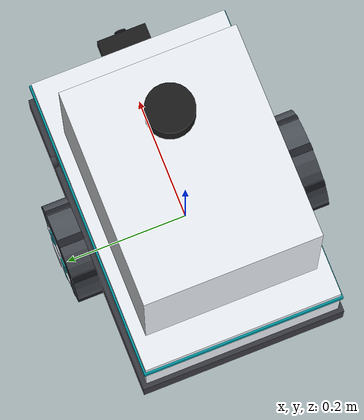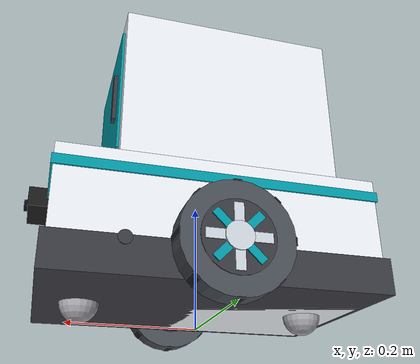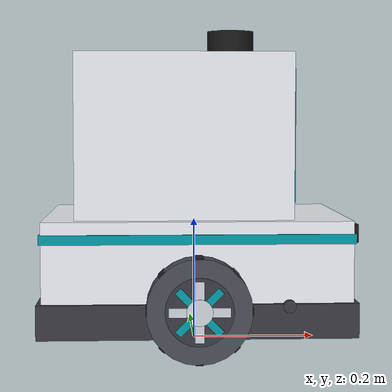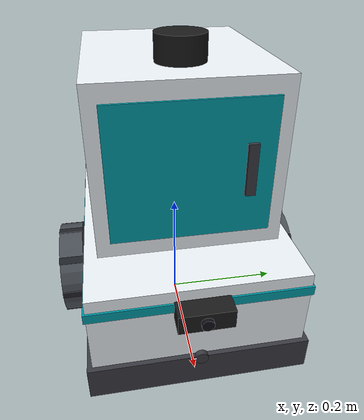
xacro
<?xml version="1.0"?>
<robot xmlns:xacro="http://www.ros.org/wiki/xacro" name="ahser">
  <!-- AHSER: Autonomous Hospital Service Robot                             -->
  <!-- Top-Level System URDF / XACRO Description                            -->

  <!-- Centralized Robot Dimensional & Mass Parameters (SI Metric Units)    -->

  <!-- Ground clearance and wheel parameters -->
  <xacro:property name="wheel_radius" value="0.080"/>       <!-- 80 mm radius / 160 mm diameter -->
  <xacro:property name="wheel_width" value="0.040"/>        <!-- 40 mm tread width -->
  <xacro:property name="wheel_track" value="0.380"/>        <!-- 380 mm lateral track width between wheels -->
  <xacro:property name="wheel_mass" value="0.80"/>          <!-- 0.80 kg per drive wheel -->

  <xacro:property name="ground_clearance" value="0.030"/>   <!-- 30 mm chassis underside ground clearance -->
  <xacro:property name="caster_radius" value="0.030"/>      <!-- 30 mm radius caster sphere (touches z=0) -->
  <xacro:property name="caster_x_offset" value="0.180"/>    <!-- 180 mm fore/aft distance from axle -->
  <xacro:property name="caster_mass" value="0.25"/>         <!-- 0.25 kg per caster assembly -->

  <!-- Main chassis body parameters -->
  <xacro:property name="chassis_length" value="0.480"/>     <!-- 480 mm front-to-back length -->
  <xacro:property name="chassis_width" value="0.320"/>      <!-- 320 mm width (fits between wheels) -->
  <xacro:property name="chassis_height" value="0.180"/>     <!-- 180 mm vertical height -->
  <xacro:property name="chassis_mass" value="8.00"/>        <!-- 8.0 kg base chassis structure and battery -->

  <!-- Upper medicine/storage compartment parameters -->
  <xacro:property name="storage_length" value="0.340"/>     <!-- 340 mm storage cabinet length -->
  <xacro:property name="storage_width" value="0.280"/>      <!-- 280 mm storage cabinet width -->
  <xacro:property name="storage_height" value="0.260"/>     <!-- 260 mm storage cabinet height -->
  <xacro:property name="storage_x_offset" value="-0.020"/>  <!-- Offset slightly aft for front sensor deck -->
  <xacro:property name="storage_mass" value="3.50"/>        <!-- 3.5 kg payload compartment -->

  <!-- Sensor parameters -->
  <xacro:property name="lidar_radius" value="0.038"/>       <!-- 76 mm diameter LiDAR housing -->
  <xacro:property name="lidar_height" value="0.040"/>       <!-- 40 mm LiDAR sensor height -->
  <xacro:property name="lidar_mass" value="0.25"/>          <!-- 0.25 kg 2D LiDAR scanner -->
  <xacro:property name="lidar_x_offset" value="0.060"/>     <!-- Forward-biased on roof for clear front view -->
  <xacro:property name="lidar_z_offset"
    value="${ground_clearance + chassis_height + storage_height + lidar_height / 2.0}"/>

  <xacro:property name="camera_length" value="0.030"/>
  <xacro:property name="camera_width" value="0.080"/>
  <xacro:property name="camera_height" value="0.030"/>
  <xacro:property name="camera_mass" value="0.10"/>
  <xacro:property name="camera_x_offset" value="${chassis_length / 2.0 + camera_length / 2.0}"/>
  <xacro:property name="camera_z_offset" value="${ground_clearance + chassis_height * 0.82}"/>

  <xacro:property name="imu_size" value="0.025"/>
  <xacro:property name="imu_height" value="0.008"/>
  <xacro:property name="imu_mass" value="0.02"/>
  <xacro:property name="imu_x_offset" value="0.000"/>
  <xacro:property name="imu_z_offset" value="${ground_clearance + 0.020}"/>

  <!-- Modular Includes                                                     -->
  <xacro:include filename="$(find ahser_description)/urdf/materials.xacro"/>
  <xacro:include filename="$(find ahser_description)/urdf/wheels.xacro"/>
  <xacro:include filename="$(find ahser_description)/urdf/sensors.xacro"/>

  <!-- Kinematic Base / Footprint Frames                                    -->

  <!-- Root Link: base_footprint on ground plane z=0 (REP 120 standard) -->
  <link name="base_footprint"/>

  <!-- base_link located at ground plane projection of drive axle -->
  <joint name="base_footprint_joint" type="fixed">
    <parent link="base_footprint"/>
    <child link="base_link"/>
    <origin xyz="0 0 0" rpy="0 0 0"/>
  </joint>

  <link name="base_link"/>

  <!-- Main Chassis Link & Joint                                            -->

  <joint name="chassis_joint" type="fixed">
    <parent link="base_link"/>
    <child link="chassis_link"/>
    <!-- Positioned above ground clearance -->
    <origin xyz="0.0 0.0 ${ground_clearance + chassis_height / 2.0}" rpy="0 0 0"/>
  </joint>

  <link name="chassis_link">
    <!-- Main white chassis body enclosure -->
    <visual>
      <origin xyz="0 0 0" rpy="0 0 0"/>
      <geometry>
        <box size="${chassis_length} ${chassis_width} ${chassis_height}"/>
      </geometry>
      <material name="hospital_white"/>
    </visual>

    <!-- Lower protective perimeter bumper / skirt -->
    <visual>
      <origin xyz="0 0 -${chassis_height * 0.35}" rpy="0 0 0"/>
      <geometry>
        <box size="${chassis_length + 0.015} ${chassis_width + 0.015} ${chassis_height * 0.30}"/>
      </geometry>
      <material name="dark_grey"/>
    </visual>

    <!-- Medical teal accent beltline trim -->
    <visual>
      <origin xyz="0 0 ${chassis_height * 0.35}" rpy="0 0 0"/>
      <geometry>
        <box size="${chassis_length + 0.006} ${chassis_width + 0.006} 0.015"/>
      </geometry>
      <material name="medical_teal"/>
    </visual>

    <!-- Physical collision bounding box -->
    <collision>
      <origin xyz="0 0 0" rpy="0 0 0"/>
      <geometry>
        <box size="${chassis_length} ${chassis_width} ${chassis_height}"/>
      </geometry>
    </collision>

    <!-- Chassis inertial tensor -->
    <inertial>
      <mass value="${chassis_mass}"/>
      <origin xyz="0 0 0" rpy="0 0 0"/>
      <inertia
        ixx="${(chassis_mass / 12.0) * (chassis_width * chassis_width + chassis_height * chassis_height)}"
        ixy="0.0"
        ixz="0.0"
        iyy="${(chassis_mass / 12.0) * (chassis_length * chassis_length + chassis_height * chassis_height)}"
        iyz="0.0"
        izz="${(chassis_mass / 12.0) * (chassis_length * chassis_length + chassis_width * chassis_width)}"/>
    </inertial>
  </link>

  <!-- Upper Medicine / Supply Storage Compartment                          -->

  <joint name="storage_compartment_joint" type="fixed">
    <parent link="base_link"/>
    <child link="storage_compartment_link"/>
    <!-- Stacked directly upon the chassis top surface -->
    <origin xyz="${storage_x_offset} 0.0 ${ground_clearance + chassis_height + storage_height / 2.0}" rpy="0 0 0"/>
  </joint>

  <link name="storage_compartment_link">
    <!-- Storage cabinet exterior body -->
    <visual>
      <origin xyz="0 0 0" rpy="0 0 0"/>
      <geometry>
        <box size="${storage_length} ${storage_width} ${storage_height}"/>
      </geometry>
      <material name="hospital_white"/>
    </visual>

    <!-- Front medicine delivery door face with medical teal styling -->
    <visual>
      <origin xyz="${storage_length / 2.0 + 0.002} 0 0" rpy="0 0 0"/>
      <geometry>
        <box size="0.004 ${storage_width * 0.85} ${storage_height * 0.80}"/>
      </geometry>
      <material name="medical_teal"/>
    </visual>

    <!-- Storage door latch / handle visual indicator -->
    <visual>
      <origin xyz="${storage_length / 2.0 + 0.006} ${storage_width * 0.3} 0" rpy="0 0 0"/>
      <geometry>
        <box size="0.008 0.015 0.080"/>
      </geometry>
      <material name="dark_grey"/>
    </visual>

    <!-- Physical collision bounding box -->
    <collision>
      <origin xyz="0 0 0" rpy="0 0 0"/>
      <geometry>
        <box size="${storage_length} ${storage_width} ${storage_height}"/>
      </geometry>
    </collision>

    <!-- Storage compartment inertial tensor -->
    <inertial>
      <mass value="${storage_mass}"/>
      <origin xyz="0 0 0" rpy="0 0 0"/>
      <inertia
        ixx="${(storage_mass / 12.0) * (storage_width * storage_width + storage_height * storage_height)}"
        ixy="0.0"
        ixz="0.0"
        iyy="${(storage_mass / 12.0) * (storage_length * storage_length + storage_height * storage_height)}"
        iyz="0.0"
        izz="${(storage_mass / 12.0) * (storage_length * storage_length + storage_width * storage_width)}"/>
    </inertial>
  </link>

  <!-- Wheels: Powered Drive Wheels & Passive Stability Casters             -->

  <!-- Left & Right Differential Drive Wheels -->
  <xacro:drive_wheel prefix="left" y_reflect="1"/>
  <xacro:drive_wheel prefix="right" y_reflect="-1"/>

  <!-- Front & Rear Passive Support Casters for balanced 4-point ground contact -->
  <xacro:caster_wheel prefix="front" x_offset="${caster_x_offset}"/>
  <xacro:caster_wheel prefix="rear" x_offset="-${caster_x_offset}"/>

  <!-- Sensor Suite (LiDAR, RGB Camera, IMU)                                -->
  <xacro:sensors/>

  <!-- Modern Gazebo (Jetty) Differential Drive & Joint State Plugins       -->
  <gazebo>
    <plugin
      filename="gz-sim-diff-drive-system"
      name="gz::sim::systems::DiffDrive">
      <left_joint>left_wheel_joint</left_joint>
      <right_joint>right_wheel_joint</right_joint>
      <wheel_separation>${wheel_track}</wheel_separation>
      <wheel_radius>${wheel_radius}</wheel_radius>
      <max_linear_acceleration>1.5</max_linear_acceleration>
      <min_linear_acceleration>-1.5</min_linear_acceleration>
      <max_angular_acceleration>2.5</max_angular_acceleration>
      <min_angular_acceleration>-2.5</min_angular_acceleration>
      <max_linear_velocity>0.8</max_linear_velocity>
      <min_linear_velocity>-0.8</min_linear_velocity>
      <max_angular_velocity>1.5</max_angular_velocity>
      <min_angular_velocity>-1.5</min_angular_velocity>
      <topic>/cmd_vel</topic>
      <odom_topic>/odom</odom_topic>
      <tf_topic>/tf</tf_topic>
      <frame_id>odom</frame_id>
      <child_frame_id>base_footprint</child_frame_id>
      <odom_publish_frequency>50</odom_publish_frequency>
    </plugin>

    <plugin
      filename="gz-sim-joint-state-publisher-system"
      name="gz::sim::systems::JointStatePublisher">
      <topic>/joint_states</topic>
      <joint_name>left_wheel_joint</joint_name>
      <joint_name>right_wheel_joint</joint_name>
    </plugin>
  </gazebo>

</robot>

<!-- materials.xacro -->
<robot xmlns:xacro="http://www.ros.org/wiki/xacro">
  <!-- AHSER Material & Color Definitions                                  -->
  <!-- Clean, professional medical/service robot color palette             -->

  <!-- Primary Chassis & Storage Body: Clean Hospital White -->
  <material name="hospital_white">
    <color rgba="0.92 0.94 0.96 1.0"/>
  </material>

  <!-- Accent: Medical Service Teal/Cyan for Doors & Brand Identification -->
  <material name="medical_teal">
    <color rgba="0.0 0.60 0.65 1.0"/>
  </material>

  <!-- Chassis Lower Skirt & Mechanical Mounts: Dark Graphite Grey -->
  <material name="dark_grey">
    <color rgba="0.22 0.22 0.25 1.0"/>
  </material>

  <!-- Secondary Trims & Structural Plates: Neutral Light Grey -->
  <material name="light_grey">
    <color rgba="0.75 0.77 0.80 1.0"/>
  </material>

  <!-- Drive Wheel Non-Marking Medical Rubber Tire (slate grey base) -->
  <material name="tire_rubber">
    <color rgba="0.28 0.30 0.33 1.0"/>
  </material>

  <!-- Non-marking tire high-traction grip tread lugs -->
  <material name="tire_tread">
    <color rgba="0.12 0.13 0.15 1.0"/>
  </material>

  <!-- Wheel rim alloy / hub face -->
  <material name="wheel_hub">
    <color rgba="0.80 0.83 0.86 1.0"/>
  </material>

  <!-- Drive Wheel Tires: Durable Matte Rubber Black -->
  <material name="wheel_black">
    <color rgba="0.12 0.12 0.12 1.0"/>
  </material>

  <!-- Passive Caster Spheres: Smooth Low-Friction Metallic Steel -->
  <material name="caster_metallic">
    <color rgba="0.65 0.65 0.68 1.0"/>
  </material>

  <!-- Sensor Enclosures (LiDAR, Camera body): Matte Black -->
  <material name="sensor_black">
    <color rgba="0.10 0.10 0.10 1.0"/>
  </material>

  <!-- Optical Lenses & Display Panel: Tinted Obsidian -->
  <material name="lens_glass">
    <color rgba="0.05 0.05 0.08 1.0"/>
  </material>
</robot>

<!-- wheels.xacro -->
<robot xmlns:xacro="http://www.ros.org/wiki/xacro">
  <!-- AHSER Wheels & Mobile Base Locomotion Module                        -->
  <!-- High-traction non-marking hospital floor tires & passive casters     -->

  <!-- Macro: Realistic low-profile tire tread grip lug along wheel circumference -->
  <xacro:macro name="tread_lug" params="angle">
    <visual>
      <origin
        xyz="${(wheel_radius - 0.0005) * cos(angle)} 0 ${(wheel_radius - 0.0005) * sin(angle)}"
        rpy="0 ${-angle} 0"/>
      <geometry>
        <!-- Sleek, subtle 0.5mm tread grip flush with tire surface (not spiked) -->
        <box size="0.002 ${wheel_width + 0.001} 0.012"/>
      </geometry>
      <material name="tire_tread"/>
    </visual>
  </xacro:macro>

  <!-- Macro: Differential Drive Powered Wheel -->
  <xacro:macro name="drive_wheel" params="prefix y_reflect">
    <joint name="${prefix}_wheel_joint" type="continuous">
      <parent link="base_link"/>
      <child link="${prefix}_wheel_link"/>
      <!-- Symmetrical placement along the transverse (Y) axle -->
      <origin xyz="0.0 ${y_reflect * (wheel_track / 2.0)} ${wheel_radius}" rpy="0 0 0"/>
      <!-- Standard ROS differential drive rotation axis (Pitch / Y-axis) -->
      <axis xyz="0 1 0"/>
      <dynamics damping="0.1" friction="0.1"/>
    </joint>

    <link name="${prefix}_wheel_link">
      <!-- Main non-marking hospital grade rubber tire -->
      <visual>
        <origin xyz="0 0 0" rpy="${pi/2} 0 0"/>
        <geometry>
          <cylinder radius="${wheel_radius}" length="${wheel_width}"/>
        </geometry>
        <material name="tire_rubber"/>
      </visual>

      <!-- Inner recessed wheel rim bed -->
      <visual>
        <origin xyz="0 0 0" rpy="${pi/2} 0 0"/>
        <geometry>
          <cylinder radius="${wheel_radius * 0.65}" length="${wheel_width + 0.002}"/>
        </geometry>
        <material name="dark_grey"/>
      </visual>

      <!-- 8-segment high-traction grip tread pattern around perimeter (visible from top view) -->
      <xacro:tread_lug angle="0"/>
      <xacro:tread_lug angle="${pi/4}"/>
      <xacro:tread_lug angle="${pi/2}"/>
      <xacro:tread_lug angle="${3*pi/4}"/>
      <xacro:tread_lug angle="${pi}"/>
      <xacro:tread_lug angle="${-3*pi/4}"/>
      <xacro:tread_lug angle="${-pi/2}"/>
      <xacro:tread_lug angle="${-pi/4}"/>

      <!-- Outer Wheel Rim & Hub Face (offset toward exterior) -->
      <!-- Center hub cap -->
      <visual>
        <origin xyz="0 ${y_reflect * (wheel_width / 2.0 + 0.003)} 0" rpy="${pi/2} 0 0"/>
        <geometry>
          <cylinder radius="${wheel_radius * 0.25}" length="0.004"/>
        </geometry>
        <material name="wheel_hub"/>
      </visual>

      <!-- High-contrast alloy rim spokes for side-view rotational visibility -->
      <visual>
        <origin xyz="0 ${y_reflect * (wheel_width / 2.0 + 0.002)} 0" rpy="0 0 0"/>
        <geometry>
          <box size="${wheel_radius * 1.15} 0.002 0.014"/>
        </geometry>
        <material name="wheel_hub"/>
      </visual>

      <visual>
        <origin xyz="0 ${y_reflect * (wheel_width / 2.0 + 0.002)} 0" rpy="0 0 0"/>
        <geometry>
          <box size="0.014 0.002 ${wheel_radius * 1.15}"/>
        </geometry>
        <material name="wheel_hub"/>
      </visual>

      <visual>
        <origin xyz="0 ${y_reflect * (wheel_width / 2.0 + 0.002)} 0" rpy="0 ${pi/4} 0"/>
        <geometry>
          <box size="${wheel_radius * 1.15} 0.002 0.012"/>
        </geometry>
        <material name="medical_teal"/>
      </visual>

      <visual>
        <origin xyz="0 ${y_reflect * (wheel_width / 2.0 + 0.002)} 0" rpy="0 ${-pi/4} 0"/>
        <geometry>
          <box size="${wheel_radius * 1.15} 0.002 0.012"/>
        </geometry>
        <material name="medical_teal"/>
      </visual>

      <!-- Physical collision cylinder (clean smooth cylindrical contact for simulation) -->
      <collision>
        <origin xyz="0 0 0" rpy="${pi/2} 0 0"/>
        <geometry>
          <cylinder radius="${wheel_radius}" length="${wheel_width}"/>
        </geometry>
      </collision>

      <!-- Accurate cylinder inertia aligned with rotation axis Y -->
      <inertial>
        <mass value="${wheel_mass}"/>
        <origin xyz="0 0 0" rpy="0 0 0"/>
        <inertia
          ixx="${(wheel_mass / 12.0) * (3.0 * wheel_radius * wheel_radius + wheel_width * wheel_width)}"
          ixy="0.0"
          ixz="0.0"
          iyy="${(wheel_mass / 2.0) * (wheel_radius * wheel_radius)}"
          iyz="0.0"
          izz="${(wheel_mass / 12.0) * (3.0 * wheel_radius * wheel_radius + wheel_width * wheel_width)}"/>
      </inertial>
    </link>

    <!-- Gazebo physics surface properties for powered drive wheel -->
    <gazebo reference="${prefix}_wheel_link">
      <mu1>1.0</mu1>
      <mu2>1.0</mu2>
    </gazebo>
  </xacro:macro>

  <!-- Macro: Passive Support Caster Wheel -->
  <xacro:macro name="caster_wheel" params="prefix x_offset">
    <joint name="${prefix}_caster_joint" type="fixed">
      <parent link="base_link"/>
      <child link="${prefix}_caster_link"/>
      <!-- Positioned along sagittal centerline (X) at height caster_radius to touch ground -->
      <origin xyz="${x_offset} 0.0 ${caster_radius}" rpy="0 0 0"/>
    </joint>

    <link name="${prefix}_caster_link">
      <!-- Caster rolling sphere -->
      <visual>
        <origin xyz="0 0 0" rpy="0 0 0"/>
        <geometry>
          <sphere radius="${caster_radius}"/>
        </geometry>
        <material name="caster_metallic"/>
      </visual>

      <!-- Caster mounting collar connecting to chassis underside -->
      <visual>
        <origin xyz="0 0 ${caster_radius * 0.7}" rpy="0 0 0"/>
        <geometry>
          <cylinder radius="${caster_radius * 0.75}" length="${caster_radius * 0.6}"/>
        </geometry>
        <material name="dark_grey"/>
      </visual>

      <collision>
        <origin xyz="0 0 0" rpy="0 0 0"/>
        <geometry>
          <sphere radius="${caster_radius}"/>
        </geometry>
      </collision>

      <!-- Solid sphere inertia tensor -->
      <inertial>
        <mass value="${caster_mass}"/>
        <origin xyz="0 0 0" rpy="0 0 0"/>
        <inertia
          ixx="${(2.0 / 5.0) * caster_mass * caster_radius * caster_radius}"
          ixy="0.0"
          ixz="0.0"
          iyy="${(2.0 / 5.0) * caster_mass * caster_radius * caster_radius}"
          iyz="0.0"
          izz="${(2.0 / 5.0) * caster_mass * caster_radius * caster_radius}"/>
      </inertial>
    </link>

    <!-- Low-friction surface for passive omnidirectional caster support -->
    <gazebo reference="${prefix}_caster_link">
      <mu1>0.001</mu1>
      <mu2>0.001</mu2>
    </gazebo>
  </xacro:macro>
</robot>

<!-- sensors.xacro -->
<robot xmlns:xacro="http://www.ros.org/wiki/xacro">
  <!-- AHSER Perception & Localization Sensor Suite                        -->
  <!-- Frames and primitive visual/collision models for LiDAR, Camera, IMU  -->

  <xacro:macro name="sensors">
    <!-- Top-Mounted 2D Planar LiDAR -->
    <joint name="lidar_joint" type="fixed">
      <parent link="base_link"/>
      <child link="lidar_link"/>
      <!-- Elevated on the roof of the upper storage compartment for 360-deg FOV -->
      <origin xyz="${lidar_x_offset} 0.0 ${lidar_z_offset}" rpy="0 0 0"/>
    </joint>

    <link name="lidar_link">
      <!-- LiDAR Base Collar -->
      <visual>
        <origin xyz="0 0 0" rpy="0 0 0"/>
        <geometry>
          <cylinder radius="${lidar_radius}" length="${lidar_height}"/>
        </geometry>
        <material name="sensor_black"/>
      </visual>

      <!-- LiDAR Rotating Optical Head Accent -->
      <visual>
        <origin xyz="0 0 ${lidar_height * 0.25}" rpy="0 0 0"/>
        <geometry>
          <cylinder radius="${lidar_radius * 0.9}" length="${lidar_height * 0.4}"/>
        </geometry>
        <material name="medical_teal"/>
      </visual>

      <collision>
        <origin xyz="0 0 0" rpy="0 0 0"/>
        <geometry>
          <cylinder radius="${lidar_radius}" length="${lidar_height}"/>
        </geometry>
      </collision>

      <inertial>
        <mass value="${lidar_mass}"/>
        <origin xyz="0 0 0" rpy="0 0 0"/>
        <inertia
          ixx="${(lidar_mass / 12.0) * (3.0 * lidar_radius * lidar_radius + lidar_height * lidar_height)}"
          ixy="0.0"
          ixz="0.0"
          iyy="${(lidar_mass / 12.0) * (3.0 * lidar_radius * lidar_radius + lidar_height * lidar_height)}"
          iyz="0.0"
          izz="${(lidar_mass / 2.0) * (lidar_radius * lidar_radius)}"/>
      </inertial>
    </link>

    <!-- Gazebo Sensor: 2D Planar LiDAR -->
    <gazebo reference="lidar_link">
      <sensor name="lidar" type="gpu_lidar">
        <gz_frame_id>lidar_link</gz_frame_id>
        <topic>/scan</topic>
        <update_rate>10</update_rate>
        <ray>
          <scan>
            <horizontal>
              <samples>360</samples>
              <resolution>1</resolution>
              <min_angle>-3.14159265</min_angle>
              <max_angle>3.14159265</max_angle>
            </horizontal>
          </scan>
          <range>
            <min>0.12</min>
            <max>12.0</max>
            <resolution>0.01</resolution>
          </range>
          <noise>
            <type>gaussian</type>
            <mean>0.0</mean>
            <stddev>0.01</stddev>
          </noise>
        </ray>
        <always_on>1</always_on>
        <visualize>true</visualize>
      </sensor>
    </gazebo>

    <!-- Front-Facing RGB Perception Camera -->
    <joint name="camera_joint" type="fixed">
      <parent link="base_link"/>
      <child link="camera_link"/>
      <!-- Mounted on the upper-front brow of the chassis facing forward (+X) -->
      <origin xyz="${camera_x_offset} 0.0 ${camera_z_offset}" rpy="0 0 0"/>
    </joint>

    <link name="camera_link">
      <!-- Camera Body Enclosure -->
      <visual>
        <origin xyz="0 0 0" rpy="0 0 0"/>
        <geometry>
          <box size="${camera_length} ${camera_width} ${camera_height}"/>
        </geometry>
        <material name="sensor_black"/>
      </visual>

      <!-- Camera Lens Barrel -->
      <visual>
        <origin xyz="${camera_length / 2.0 + 0.003} 0 0" rpy="0 ${pi/2} 0"/>
        <geometry>
          <cylinder radius="${camera_height * 0.3}" length="0.006"/>
        </geometry>
        <material name="lens_glass"/>
      </visual>

      <collision>
        <origin xyz="0 0 0" rpy="0 0 0"/>
        <geometry>
          <box size="${camera_length} ${camera_width} ${camera_height}"/>
        </geometry>
      </collision>

      <inertial>
        <mass value="${camera_mass}"/>
        <origin xyz="0 0 0" rpy="0 0 0"/>
        <inertia
          ixx="${(camera_mass / 12.0) * (camera_width * camera_width + camera_height * camera_height)}"
          ixy="0.0"
          ixz="0.0"
          iyy="${(camera_mass / 12.0) * (camera_length * camera_length + camera_height * camera_height)}"
          iyz="0.0"
          izz="${(camera_mass / 12.0) * (camera_length * camera_length + camera_width * camera_width)}"/>
      </inertial>
    </link>

    <!-- Standard ROS Camera Optical Frame (Z forward, X right, Y down) -->
    <joint name="camera_optical_joint" type="fixed">
      <parent link="camera_link"/>
      <child link="camera_optical_link"/>
      <origin xyz="0 0 0" rpy="-${pi/2} 0 -${pi/2}"/>
    </joint>

    <link name="camera_optical_link"/>

    <!-- Gazebo Sensor: Front RGB-D Perception Camera -->
    <gazebo reference="camera_link">
      <sensor name="camera" type="rgbd_camera">
        <gz_frame_id>camera_optical_link</gz_frame_id>
        <topic>/camera</topic>
        <update_rate>15</update_rate>
        <camera>
          <horizontal_fov>1.085</horizontal_fov>
          <image>
            <width>640</width>
            <height>480</height>
            <format>R8G8B8</format>
          </image>
          <clip>
            <near>0.1</near>
            <far>10.0</far>
          </clip>
          <depth_camera>
            <clip>
              <near>0.1</near>
              <far>10.0</far>
            </clip>
          </depth_camera>
        </camera>
        <always_on>1</always_on>
        <visualize>true</visualize>
      </sensor>
    </gazebo>

    <!-- Inertial Measurement Unit (IMU) -->
    <joint name="imu_joint" type="fixed">
      <parent link="base_link"/>
      <child link="imu_link"/>
      <!-- Positioned close to the geometric center and drive axle -->
      <origin xyz="${imu_x_offset} 0.0 ${imu_z_offset}" rpy="0 0 0"/>
    </joint>

    <link name="imu_link">
      <visual>
        <origin xyz="0 0 0" rpy="0 0 0"/>
        <geometry>
          <box size="${imu_size} ${imu_size} ${imu_height}"/>
        </geometry>
        <material name="dark_grey"/>
      </visual>

      <collision>
        <origin xyz="0 0 0" rpy="0 0 0"/>
        <geometry>
          <box size="${imu_size} ${imu_size} ${imu_height}"/>
        </geometry>
      </collision>

      <inertial>
        <mass value="${imu_mass}"/>
        <origin xyz="0 0 0" rpy="0 0 0"/>
        <inertia
          ixx="${(imu_mass / 12.0) * (imu_size * imu_size + imu_height * imu_height)}"
          ixy="0.0"
          ixz="0.0"
          iyy="${(imu_mass / 12.0) * (imu_size * imu_size + imu_height * imu_height)}"
          iyz="0.0"
          izz="${(imu_mass / 12.0) * (imu_size * imu_size + imu_size * imu_size)}"/>
      </inertial>
    </link>

    <!-- Gazebo Sensor: Inertial Measurement Unit (IMU) -->
    <gazebo reference="imu_link">
      <sensor name="imu" type="imu">
        <gz_frame_id>imu_link</gz_frame_id>
        <topic>/imu</topic>
        <update_rate>50</update_rate>
        <always_on>1</always_on>
        <visualize>false</visualize>
        <imu>
          <angular_velocity>
            <x>
              <noise type="gaussian">
                <mean>0.0</mean>
                <stddev>0.0002</stddev>
              </noise>
            </x>
            <y>
              <noise type="gaussian">
                <mean>0.0</mean>
                <stddev>0.0002</stddev>
              </noise>
            </y>
            <z>
              <noise type="gaussian">
                <mean>0.0</mean>
                <stddev>0.0002</stddev>
              </noise>
            </z>
          </angular_velocity>
          <linear_acceleration>
            <x>
              <noise type="gaussian">
                <mean>0.0</mean>
                <stddev>0.005</stddev>
              </noise>
            </x>
            <y>
              <noise type="gaussian">
                <mean>0.0</mean>
                <stddev>0.005</stddev>
              </noise>
            </y>
            <z>
              <noise type="gaussian">
                <mean>0.0</mean>
                <stddev>0.005</stddev>
              </noise>
            </z>
          </linear_acceleration>
        </imu>
      </sensor>
    </gazebo>

    <!-- Macro: Short-Range Ultrasonic Proximity Sonar Sensor                 -->
    <xacro:macro name="ultrasonic_sensor" params="name x y z yaw">
      <joint name="ultrasonic_${name}_joint" type="fixed">
        <parent link="base_link"/>
        <child link="ultrasonic_${name}_link"/>
        <origin xyz="${x} ${y} ${z}" rpy="0 0 ${yaw}"/>
      </joint>

      <link name="ultrasonic_${name}_link">
        <visual>
          <origin xyz="0 0 0" rpy="0 ${pi/2} 0"/>
          <geometry>
            <cylinder radius="0.010" length="0.008"/>
          </geometry>
          <material name="dark_grey"/>
        </visual>
        <collision>
          <origin xyz="0 0 0" rpy="0 ${pi/2} 0"/>
          <geometry>
            <cylinder radius="0.010" length="0.008"/>
          </geometry>
        </collision>
        <inertial>
          <mass value="0.015"/>
          <origin xyz="0 0 0" rpy="0 0 0"/>
          <inertia
            ixx="0.000001" ixy="0.0" ixz="0.0"
            iyy="0.000001" iyz="0.0"
            izz="0.000001"/>
        </inertial>
      </link>

      <gazebo reference="ultrasonic_${name}_link">
        <sensor name="ultrasonic_${name}" type="gpu_lidar">
          <gz_frame_id>ultrasonic_${name}_link</gz_frame_id>
          <topic>/ultrasonic/${name}</topic>
          <update_rate>15</update_rate>
          <ray>
            <scan>
              <horizontal>
                <samples>5</samples>
                <resolution>1</resolution>
                <min_angle>-0.2618</min_angle>
                <max_angle>0.2618</max_angle>
              </horizontal>
              <vertical>
                <samples>3</samples>
                <resolution>1</resolution>
                <min_angle>-0.1309</min_angle>
                <max_angle>0.1309</max_angle>
              </vertical>
            </scan>
            <range>
              <min>0.04</min>
              <max>2.50</max>
              <resolution>0.01</resolution>
            </range>
            <noise>
              <type>gaussian</type>
              <mean>0.0</mean>
              <stddev>0.005</stddev>
            </noise>
          </ray>
          <always_on>1</always_on>
          <visualize>false</visualize>
        </sensor>
      </gazebo>
    </xacro:macro>

    <!-- Ultrasonic Proximity Sensors: Front, Left, and Right Perimeter -->
    <xacro:ultrasonic_sensor name="front"
      x="${chassis_length / 2.0 + 0.005}" y="0.0" z="${ground_clearance + 0.050}" yaw="0.0"/>
    <xacro:ultrasonic_sensor name="left"
      x="0.140" y="${chassis_width / 2.0 + 0.005}" z="${ground_clearance + 0.050}" yaw="${pi/2}"/>
    <xacro:ultrasonic_sensor name="right"
      x="0.140" y="-${chassis_width / 2.0 + 0.005}" z="${ground_clearance + 0.050}" yaw="-${pi/2}"/>
  </xacro:macro>
</robot>
